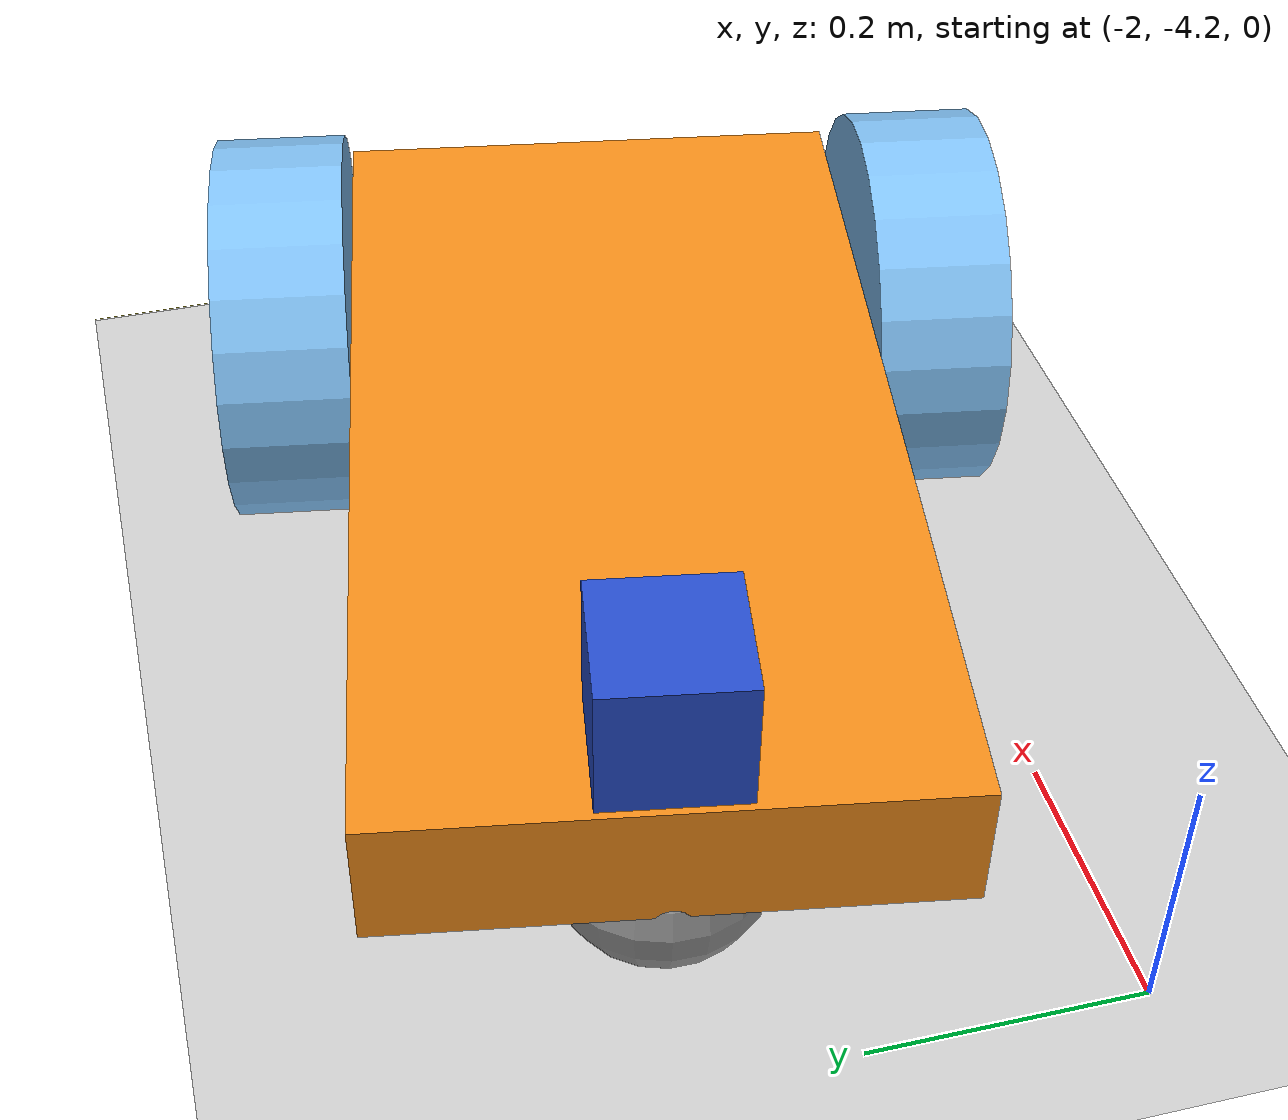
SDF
<sdf version="1.7">
 <world name="default">
  <light name="sun" type="directional">
   <pose>0 0 10 0 -0 0</pose>
   <diffuse>0.8 0.8 0.8 1</diffuse>
   <specular>0.2 0.2 0.2 1</specular>
   <attenuation>
    <range>1000</range>
    <constant>0.9</constant>
    <linear>0.01</linear>
    <quadratic>0.001</quadratic>
   </attenuation>
   <direction>-0.5 0.1 -0.9</direction>
   <spot><inner_angle>0</inner_angle><outer_angle>0</outer_angle><falloff>0</falloff></spot>
  </light>
  <model name="ground_plane">
   <static>1</static>
   <link name="link">
    <collision name="collision">
     <geometry><plane><normal>0 0 1</normal><size>100 100</size></plane></geometry>
     <surface>
      <contact><collide_bitmask>65535</collide_bitmask></contact>
      <friction><ode><mu>100</mu><mu2>50</mu2></ode></friction>
     </surface>
    </collision>
    <visual name="visual">
     <cast_shadows>0</cast_shadows>
     <geometry><plane><normal>0 0 1</normal><size>100 100</size></plane></geometry>
     <material>
      <script><uri>file://media/materials/scripts/gazebo.material</uri><name>Gazebo/Grey</name></script>
     </material>
    </visual>
   </link>
  </model>
  <gravity>0 0 -9.8</gravity>
  <magnetic_field>6e-06 2.3e-05 -4.2e-05</magnetic_field>
  <atmosphere type="adiabatic"/>
  <physics type="ode">
   <max_step_size>0.001</max_step_size>
   <real_time_factor>1</real_time_factor>
   <real_time_update_rate>1000</real_time_update_rate>
  </physics>
  <scene><ambient>0.4 0.4 0.4 1</ambient><background>0.7 0.7 0.7 1</background><shadows>1</shadows></scene>
  <audio><device>default</device></audio>
  <spherical_coordinates>
   <surface_model>EARTH_WGS84</surface_model>
   <latitude_deg>0</latitude_deg>
   <longitude_deg>0</longitude_deg>
   <elevation>0</elevation>
   <heading_deg>0</heading_deg>
  </spherical_coordinates>
  <model name="lab6">
   <link name="base">
    <inertial>
     <pose>-0.106667 0 0.033333 0 -0 0</pose>
     <mass>1.5</mass>
     <inertia>
      <ixx>0.0233333</ixx>
      <ixy>0</ixy>
      <ixz>0.0106667</ixz>
      <iyy>0.0574667</iyy>
      <iyz>0</iyz>
      <izz>0.0541333</izz>
     </inertia>
    </inertial>
    <collision name="base_collision"><geometry><box><size>0.75 0.4 0.1</size></box></geometry></collision>
    <collision name="base_fixed_joint_lump__camera_collision_1">
     <pose>-0.32 0 0.1 0 -0 3.14</pose>
     <geometry><box><size>0.1 0.1 0.1</size></box></geometry>
    </collision>
    <visual name="base_visual">
     <geometry><box><size>0.75 0.4 0.1</size></box></geometry>
     <material>
      <script><name>Gazebo/Orange</name><uri>file://media/materials/scripts/gazebo.material</uri></script>
     </material>
    </visual>
    <visual name="base_fixed_joint_lump__camera_visual_1">
     <pose>-0.32 0 0.1 0 -0 3.14</pose>
     <geometry><box><size>0.1 0.1 0.1</size></box></geometry>
     <material>
      <script><name>Gazebo/Blue</name><uri>file://media/materials/scripts/gazebo.material</uri></script>
     </material>
    </visual>
    <sensor name="camera1" type="camera">
     <visualize>1</visualize>
     <update_rate>30</update_rate>
     <camera name="head">
      <horizontal_fov>1.39626</horizontal_fov>
      <image><width>512</width><height>512</height><format>R8G8B8</format></image>
      <clip><near>0.02</near><far>500</far></clip>
     </camera>
     <plugin name="camera_controller" filename="libgazebo_ros_camera.so">
      <alwaysOn>1</alwaysOn>
      <updateRate>0.0</updateRate>
      <cameraName>/camera</cameraName>
      <imageTopicName>image_raw</imageTopicName>
      <cameraInfoTopicName>camera_info</cameraInfoTopicName>
      <frameName>camera_link</frameName>
      <hackBaseline>0.07</hackBaseline>
     </plugin>
     <pose>-0.32 0 0.1 0 -0 3.14</pose>
    </sensor>
   </link>
   <joint name="caster_joint" type="revolute">
    <pose relative_to="base">-0.3 0 -0.07 0 -0 0</pose>
    <parent>base</parent>
    <child>caster</child>
    <axis>
     <xyz>0 0 1</xyz>
     <limit><lower>-1e+16</lower><upper>1e+16</upper></limit>
     <dynamics><spring_reference>0</spring_reference><spring_stiffness>0</spring_stiffness></dynamics>
    </axis>
   </joint>
   <link name="caster">
    <pose relative_to="caster_joint">0 0 0 0 -0 0</pose>
    <inertial>
     <mass>1</mass>
     <inertia><ixx>0.01</ixx><ixy>0</ixy><ixz>0</ixz><iyy>0.01</iyy><iyz>0</iyz><izz>0.01</izz></inertia>
    </inertial>
    <collision name="caster_collision"><geometry><sphere><radius>0.08</radius></sphere></geometry></collision>
    <visual name="caster_visual">
     <geometry><sphere><radius>0.08</radius></sphere></geometry>
     <material>
      <script><name>Gazebo/Grey</name><uri>file://media/materials/scripts/gazebo.material</uri></script>
     </material>
    </visual>
   </link>
   <joint name="wheel_left_joint" type="revolute">
    <pose relative_to="base">0.2 -0.25 0 1.57 -0 0</pose>
    <parent>base</parent>
    <child>wheel_left_link</child>
    <axis>
     <xyz>0 0 1</xyz>
     <limit><lower>-1e+16</lower><upper>1e+16</upper></limit>
     <dynamics><spring_reference>0</spring_reference><spring_stiffness>0</spring_stiffness></dynamics>
    </axis>
   </joint>
   <link name="wheel_left_link">
    <pose relative_to="wheel_left_joint">0 0 0 0 -0 0</pose>
    <inertial>
     <mass>2</mass>
     <inertia><ixx>0.01</ixx><ixy>0</ixy><ixz>0</ixz><iyy>0.01</iyy><iyz>0</iyz><izz>0.01</izz></inertia>
    </inertial>
    <collision name="wheel_left_link_collision">
     <geometry><cylinder><length>0.1</length><radius>0.15</radius></cylinder></geometry>
    </collision>
    <visual name="wheel_left_link_visual">
     <geometry><cylinder><length>0.1</length><radius>0.15</radius></cylinder></geometry>
     <material>
      <script><name>Gazebo/SkyBlue</name><uri>file://media/materials/scripts/gazebo.material</uri></script>
     </material>
    </visual>
   </link>
   <joint name="wheel_right_joint" type="revolute">
    <pose relative_to="base">0.2 0.25 0 1.57 -0 0</pose>
    <parent>base</parent>
    <child>wheel_right_link</child>
    <axis>
     <xyz>0 0 1</xyz>
     <limit><lower>-1e+16</lower><upper>1e+16</upper></limit>
     <dynamics><spring_reference>0</spring_reference><spring_stiffness>0</spring_stiffness></dynamics>
    </axis>
   </joint>
   <link name="wheel_right_link">
    <pose relative_to="wheel_right_joint">0 0 0 0 -0 0</pose>
    <inertial>
     <mass>2</mass>
     <inertia><ixx>0.01</ixx><ixy>0</ixy><ixz>0</ixz><iyy>0.01</iyy><iyz>0</iyz><izz>0.01</izz></inertia>
    </inertial>
    <collision name="wheel_right_link_collision">
     <geometry><cylinder><length>0.1</length><radius>0.15</radius></cylinder></geometry>
    </collision>
    <visual name="wheel_right_link_visual">
     <geometry><cylinder><length>0.1</length><radius>0.15</radius></cylinder></geometry>
     <material>
      <script><name>Gazebo/SkyBlue</name><uri>file://media/materials/scripts/gazebo.material</uri></script>
     </material>
    </visual>
   </link>
   <static>0</static>
   <plugin name="gazebo_base_controller" filename="libgazebo_ros_diff_drive.so">
    <odometry_frame>odom</odometry_frame>
    <commandTopic>cmd_vel</commandTopic>
    <publish_odom>1</publish_odom>
    <publish_odom_tf>1</publish_odom_tf>
    <update_rate>15.0</update_rate>
    <left_joint>wheel_left_joint</left_joint>
    <right_joint>wheel_right_joint</right_joint>
    <wheel_separation>0.5</wheel_separation>
    <wheel_diameter>0.3</wheel_diameter>
    <max_wheel_acceleration>0.7</max_wheel_acceleration>
    <max_wheel_torque>8</max_wheel_torque>
    <robotBaseFrame>base</robotBaseFrame>
   </plugin>
   <pose>-1.56729 -3.94652 0.150024 -2e-06 -8.1e-05 -0.165073</pose>
  </model>
  <model name="yellow line">
   <static>1</static>
   <link name="link_ground">
    <collision name="collision">
     <geometry><plane><normal>0 0 1</normal><size>0.1 3.2</size></plane></geometry>
     <surface><friction><ode><mu>100</mu><mu2>50</mu2></ode></friction></surface>
    </collision>
    <visual name="visual_ground">
     <cast_shadows>0</cast_shadows>
     <geometry><plane><normal>0 0 1</normal><size>0.5 10</size></plane></geometry>
     <material>
      <script><uri>file://media/materials/scripts/gazebo.material</uri><name>Gazebo/Yellow</name></script>
     </material>
    </visual>
   </link>
   <pose>0.975047 0.399941 0 0 -0 0</pose>
  </model>
 </world>
</sdf>
